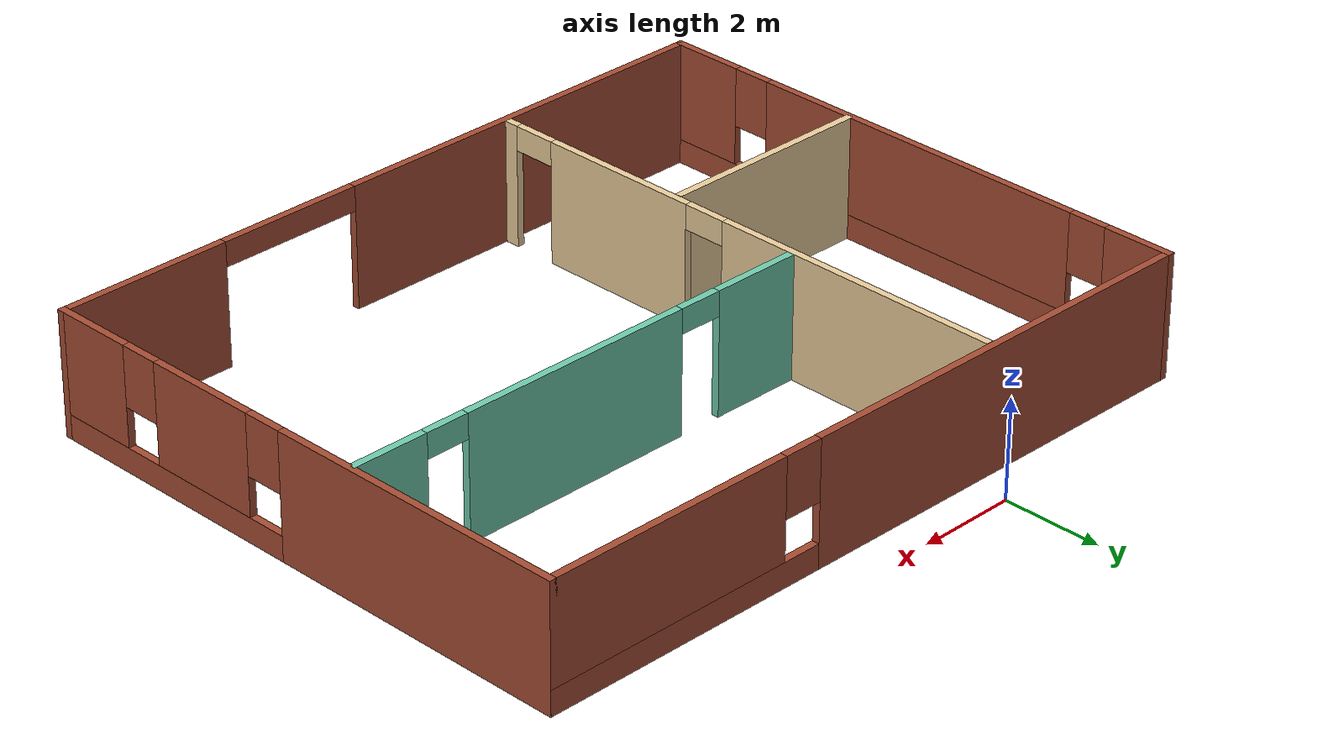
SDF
<?xml version='1.0'?>
<sdf version='1.6'>
  <model name='lab'>
    <pose frame=''>2.375 -6.745 0 0 -0 0</pose>
    <link name='Wall_0'>
      <pose frame=''>0 5.925 0 0 -0 0</pose>
      <visual name='Wall_0_Visual_0'>
        <pose frame=''>-3.02678 0 1.25 0 -0 0</pose>
        <geometry>
          <box>
            <size>8.94643 0.15 2.5</size>
          </box>
        </geometry>
        <material>
          <script>
            <uri>file://media/materials/scripts/gazebo.material</uri>
            <name>Gazebo/Bricks</name>
          </script>
          <ambient>1 1 1 1</ambient>
        </material>
        <meta>
          <layer>0</layer>
        </meta>
      </visual>
      <collision name='Wall_0_Collision_0'>
        <geometry>
          <box>
            <size>8.94643 0.15 2.5</size>
          </box>
        </geometry>
        <pose frame=''>-3.02678 0 1.25 0 -0 0</pose>
      </collision>
      <visual name='Wall_0_Visual_1'>
        <pose frame=''>4.47321 0 0.25 0 -0 0</pose>
        <geometry>
          <box>
            <size>6.05357 0.15 0.5</size>
          </box>
        </geometry>
        <material>
          <script>
            <uri>file://media/materials/scripts/gazebo.material</uri>
            <name>Gazebo/Bricks</name>
          </script>
          <ambient>1 1 1 1</ambient>
        </material>
        <meta>
          <layer>0</layer>
        </meta>
      </visual>
      <collision name='Wall_0_Collision_1'>
        <geometry>
          <box>
            <size>6.05357 0.15 0.5</size>
          </box>
        </geometry>
        <pose frame=''>4.47321 0 0.25 0 -0 0</pose>
      </collision>
      <visual name='Wall_0_Visual_2'>
        <pose frame=''>4.87322 0 1.5 0 -0 0</pose>
        <geometry>
          <box>
            <size>5.25357 0.15 2</size>
          </box>
        </geometry>
        <material>
          <script>
            <uri>file://media/materials/scripts/gazebo.material</uri>
            <name>Gazebo/Bricks</name>
          </script>
          <ambient>1 1 1 1</ambient>
        </material>
        <meta>
          <layer>0</layer>
        </meta>
      </visual>
      <collision name='Wall_0_Collision_2'>
        <geometry>
          <box>
            <size>5.25357 0.15 2</size>
          </box>
        </geometry>
        <pose frame=''>4.87322 0 1.5 0 -0 0</pose>
      </collision>
      <visual name='Wall_0_Visual_3'>
        <pose frame=''>1.84643 0 1.9 0 -0 0</pose>
        <geometry>
          <box>
            <size>0.8 0.15 1.2</size>
          </box>
        </geometry>
        <material>
          <script>
            <uri>file://media/materials/scripts/gazebo.material</uri>
            <name>Gazebo/Bricks</name>
          </script>
          <ambient>1 1 1 1</ambient>
        </material>
        <meta>
          <layer>0</layer>
        </meta>
      </visual>
      <collision name='Wall_0_Collision_3'>
        <geometry>
          <box>
            <size>0.8 0.15 1.2</size>
          </box>
        </geometry>
        <pose frame=''>1.84643 0 1.9 0 -0 0</pose>
      </collision>
    </link>
    <link name='Wall_11'>
      <pose frame=''>2.26958 1.34658 0 0 -0 0</pose>
      <visual name='Wall_11_Visual_0'>
        <pose frame=''>-4.15547 0 1.25 0 -0 0</pose>
        <geometry>
          <box>
            <size>1.93905 0.15 2.5</size>
          </box>
        </geometry>
        <material>
          <script>
            <uri>file://media/materials/scripts/gazebo.material</uri>
            <name>Gazebo/Grey</name>
          </script>
          <ambient>0.435294 0.796078 0.67451 1</ambient>
        </material>
        <meta>
          <layer>0</layer>
        </meta>
      </visual>
      <collision name='Wall_11_Collision_0'>
        <geometry>
          <box>
            <size>1.93905 0.15 2.5</size>
          </box>
        </geometry>
        <pose frame=''>-4.15547 0 1.25 0 -0 0</pose>
      </collision>
      <visual name='Wall_11_Visual_1'>
        <pose frame=''>0.187453 0 1.25 0 -0 0</pose>
        <geometry>
          <box>
            <size>4.9468 0.15 2.5</size>
          </box>
        </geometry>
        <material>
          <script>
            <uri>file://media/materials/scripts/gazebo.material</uri>
            <name>Gazebo/Grey</name>
          </script>
          <ambient>0.435294 0.796078 0.67451 1</ambient>
        </material>
        <meta>
          <layer>0</layer>
        </meta>
      </visual>
      <collision name='Wall_11_Collision_1'>
        <geometry>
          <box>
            <size>4.9468 0.15 2.5</size>
          </box>
        </geometry>
        <pose frame=''>0.187453 0 1.25 0 -0 0</pose>
      </collision>
      <visual name='Wall_11_Visual_2'>
        <pose frame=''>4.34293 0 1.25 0 -0 0</pose>
        <geometry>
          <box>
            <size>1.56415 0.15 2.5</size>
          </box>
        </geometry>
        <material>
          <script>
            <uri>file://media/materials/scripts/gazebo.material</uri>
            <name>Gazebo/Grey</name>
          </script>
          <ambient>0.435294 0.796078 0.67451 1</ambient>
        </material>
        <meta>
          <layer>0</layer>
        </meta>
      </visual>
      <collision name='Wall_11_Collision_2'>
        <geometry>
          <box>
            <size>1.56415 0.15 2.5</size>
          </box>
        </geometry>
        <pose frame=''>4.34293 0 1.25 0 -0 0</pose>
      </collision>
      <visual name='Wall_11_Visual_3'>
        <pose frame=''>-2.73595 0 2.25 0 -0 0</pose>
        <geometry>
          <box>
            <size>0.9 0.15 0.5</size>
          </box>
        </geometry>
        <material>
          <script>
            <uri>file://media/materials/scripts/gazebo.material</uri>
            <name>Gazebo/Grey</name>
          </script>
          <ambient>0.435294 0.796078 0.67451 1</ambient>
        </material>
        <meta>
          <layer>0</layer>
        </meta>
      </visual>
      <collision name='Wall_11_Collision_3'>
        <geometry>
          <box>
            <size>0.9 0.15 0.5</size>
          </box>
        </geometry>
        <pose frame=''>-2.73595 0 2.25 0 -0 0</pose>
      </collision>
      <visual name='Wall_11_Visual_4'>
        <pose frame=''>3.11085 0 2.25 0 -0 0</pose>
        <geometry>
          <box>
            <size>0.9 0.15 0.5</size>
          </box>
        </geometry>
        <material>
          <script>
            <uri>file://media/materials/scripts/gazebo.material</uri>
            <name>Gazebo/Grey</name>
          </script>
          <ambient>0.435294 0.796078 0.67451 1</ambient>
        </material>
        <meta>
          <layer>0</layer>
        </meta>
      </visual>
      <collision name='Wall_11_Collision_4'>
        <geometry>
          <box>
            <size>0.9 0.15 0.5</size>
          </box>
        </geometry>
        <pose frame=''>3.11085 0 2.25 0 -0 0</pose>
      </collision>
    </link>
    <link name='Wall_2'>
      <pose frame=''>-7.425 0 0 0 0 -1.5708</pose>
      <visual name='Wall_2_Visual_0'>
        <pose frame=''>-5.28084 0 1.25 0 -0 0</pose>
        <geometry>
          <box>
            <size>1.43833 0.15 2.5</size>
          </box>
        </geometry>
        <material>
          <script>
            <uri>file://media/materials/scripts/gazebo.material</uri>
            <name>Gazebo/Bricks</name>
          </script>
          <ambient>0.921569 0.807843 0.615686 1</ambient>
        </material>
        <meta>
          <layer>0</layer>
        </meta>
      </visual>
      <collision name='Wall_2_Collision_0'>
        <geometry>
          <box>
            <size>1.43833 0.15 2.5</size>
          </box>
        </geometry>
        <pose frame=''>-5.28084 0 1.25 0 -0 0</pose>
      </collision>
      <visual name='Wall_2_Visual_1'>
        <pose frame=''>0.719164 0 0.25 0 -0 0</pose>
        <geometry>
          <box>
            <size>10.5617 0.15 0.5</size>
          </box>
        </geometry>
        <material>
          <script>
            <uri>file://media/materials/scripts/gazebo.material</uri>
            <name>Gazebo/Bricks</name>
          </script>
          <ambient>0.921569 0.807843 0.615686 1</ambient>
        </material>
        <meta>
          <layer>0</layer>
        </meta>
      </visual>
      <collision name='Wall_2_Collision_1'>
        <geometry>
          <box>
            <size>10.5617 0.15 0.5</size>
          </box>
        </geometry>
        <pose frame=''>0.719164 0 0.25 0 -0 0</pose>
      </collision>
      <visual name='Wall_2_Visual_2'>
        <pose frame=''>-0.080368 0 1.5 0 -0 0</pose>
        <geometry>
          <box>
            <size>7.36261 0.15 2</size>
          </box>
        </geometry>
        <material>
          <script>
            <uri>file://media/materials/scripts/gazebo.material</uri>
            <name>Gazebo/Bricks</name>
          </script>
          <ambient>0.921569 0.807843 0.615686 1</ambient>
        </material>
        <meta>
          <layer>0</layer>
        </meta>
      </visual>
      <collision name='Wall_2_Collision_2'>
        <geometry>
          <box>
            <size>7.36261 0.15 2</size>
          </box>
        </geometry>
        <pose frame=''>-0.080368 0 1.5 0 -0 0</pose>
      </collision>
      <visual name='Wall_2_Visual_3'>
        <pose frame=''>5.20047 0 1.5 0 -0 0</pose>
        <geometry>
          <box>
            <size>1.59906 0.15 2</size>
          </box>
        </geometry>
        <material>
          <script>
            <uri>file://media/materials/scripts/gazebo.material</uri>
            <name>Gazebo/Bricks</name>
          </script>
          <ambient>0.921569 0.807843 0.615686 1</ambient>
        </material>
        <meta>
          <layer>0</layer>
        </meta>
      </visual>
      <collision name='Wall_2_Collision_3'>
        <geometry>
          <box>
            <size>1.59906 0.15 2</size>
          </box>
        </geometry>
        <pose frame=''>5.20047 0 1.5 0 -0 0</pose>
      </collision>
      <visual name='Wall_2_Visual_4'>
        <pose frame=''>-4.16167 0 1.9 0 -0 0</pose>
        <geometry>
          <box>
            <size>0.8 0.15 1.2</size>
          </box>
        </geometry>
        <material>
          <script>
            <uri>file://media/materials/scripts/gazebo.material</uri>
            <name>Gazebo/Bricks</name>
          </script>
          <ambient>0.921569 0.807843 0.615686 1</ambient>
        </material>
        <meta>
          <layer>0</layer>
        </meta>
      </visual>
      <collision name='Wall_2_Collision_4'>
        <geometry>
          <box>
            <size>0.8 0.15 1.2</size>
          </box>
        </geometry>
        <pose frame=''>-4.16167 0 1.9 0 -0 0</pose>
      </collision>
      <visual name='Wall_2_Visual_5'>
        <pose frame=''>4.00094 0 1.9 0 -0 0</pose>
        <geometry>
          <box>
            <size>0.8 0.15 1.2</size>
          </box>
        </geometry>
        <material>
          <script>
            <uri>file://media/materials/scripts/gazebo.material</uri>
            <name>Gazebo/Bricks</name>
          </script>
          <ambient>0.921569 0.807843 0.615686 1</ambient>
        </material>
        <meta>
          <layer>0</layer>
        </meta>
      </visual>
      <collision name='Wall_2_Collision_5'>
        <geometry>
          <box>
            <size>0.8 0.15 1.2</size>
          </box>
        </geometry>
        <pose frame=''>4.00094 0 1.9 0 -0 0</pose>
      </collision>
    </link>
    <link name='Wall_3'>
      <pose frame=''>0 -5.925 0 0 -0 0</pose>
      <visual name='Wall_3_Visual_0'>
        <pose frame=''>-3.28908 0 1.25 0 -0 0</pose>
        <geometry>
          <box>
            <size>8.42184 0.15 2.5</size>
          </box>
        </geometry>
        <material>
          <script>
            <uri>file://media/materials/scripts/gazebo.material</uri>
            <name>Gazebo/Bricks</name>
          </script>
          <ambient>1 1 1 1</ambient>
        </material>
        <meta>
          <layer>0</layer>
        </meta>
      </visual>
      <collision name='Wall_3_Collision_0'>
        <geometry>
          <box>
            <size>8.42184 0.15 2.5</size>
          </box>
        </geometry>
        <pose frame=''>-3.28908 0 1.25 0 -0 0</pose>
      </collision>
      <visual name='Wall_3_Visual_1'>
        <pose frame=''>5.71092 0 1.25 0 -0 0</pose>
        <geometry>
          <box>
            <size>3.57816 0.15 2.5</size>
          </box>
        </geometry>
        <material>
          <script>
            <uri>file://media/materials/scripts/gazebo.material</uri>
            <name>Gazebo/Bricks</name>
          </script>
          <ambient>1 1 1 1</ambient>
        </material>
        <meta>
          <layer>0</layer>
        </meta>
      </visual>
      <collision name='Wall_3_Collision_1'>
        <geometry>
          <box>
            <size>3.57816 0.15 2.5</size>
          </box>
        </geometry>
        <pose frame=''>5.71092 0 1.25 0 -0 0</pose>
      </collision>
      <visual name='Wall_3_Visual_2'>
        <pose frame=''>2.42184 0 2.25 0 -0 0</pose>
        <geometry>
          <box>
            <size>3 0.15 0.5</size>
          </box>
        </geometry>
        <material>
          <script>
            <uri>file://media/materials/scripts/gazebo.material</uri>
            <name>Gazebo/Bricks</name>
          </script>
          <ambient>1 1 1 1</ambient>
        </material>
        <meta>
          <layer>0</layer>
        </meta>
      </visual>
      <collision name='Wall_3_Collision_2'>
        <geometry>
          <box>
            <size>3 0.15 0.5</size>
          </box>
        </geometry>
        <pose frame=''>2.42184 0 2.25 0 -0 0</pose>
      </collision>
    </link>
    <link name='Wall_5'>
      <pose frame=''>7.425 0 0 0 0 -1.5708</pose>
      <visual name='Wall_5_Visual_0'>
        <pose frame=''>-2.83874 0 1.25 0 -0 0</pose>
        <geometry>
          <box>
            <size>6.32251 0.15 2.5</size>
          </box>
        </geometry>
        <material>
          <script>
            <uri>file://media/materials/scripts/gazebo.material</uri>
            <name>Gazebo/Bricks</name>
          </script>
          <ambient>1 1 1 1</ambient>
        </material>
        <meta>
          <layer>0</layer>
        </meta>
      </visual>
      <collision name='Wall_5_Collision_0'>
        <geometry>
          <box>
            <size>6.32251 0.15 2.5</size>
          </box>
        </geometry>
        <pose frame=''>-2.83874 0 1.25 0 -0 0</pose>
      </collision>
      <visual name='Wall_5_Visual_1'>
        <pose frame=''>3.16126 0 0.25 0 -0 0</pose>
        <geometry>
          <box>
            <size>5.67749 0.15 0.5</size>
          </box>
        </geometry>
        <material>
          <script>
            <uri>file://media/materials/scripts/gazebo.material</uri>
            <name>Gazebo/Bricks</name>
          </script>
          <ambient>1 1 1 1</ambient>
        </material>
        <meta>
          <layer>0</layer>
        </meta>
      </visual>
      <collision name='Wall_5_Collision_1'>
        <geometry>
          <box>
            <size>5.67749 0.15 0.5</size>
          </box>
        </geometry>
        <pose frame=''>3.16126 0 0.25 0 -0 0</pose>
      </collision>
      <visual name='Wall_5_Visual_2'>
        <pose frame=''>2.29482 0 1.5 0 -0 0</pose>
        <geometry>
          <box>
            <size>2.34461 0.15 2</size>
          </box>
        </geometry>
        <material>
          <script>
            <uri>file://media/materials/scripts/gazebo.material</uri>
            <name>Gazebo/Bricks</name>
          </script>
          <ambient>1 1 1 1</ambient>
        </material>
        <meta>
          <layer>0</layer>
        </meta>
      </visual>
      <collision name='Wall_5_Collision_2'>
        <geometry>
          <box>
            <size>2.34461 0.15 2</size>
          </box>
        </geometry>
        <pose frame=''>2.29482 0 1.5 0 -0 0</pose>
      </collision>
      <visual name='Wall_5_Visual_3'>
        <pose frame=''>5.13356 0 1.5 0 -0 0</pose>
        <geometry>
          <box>
            <size>1.73288 0.15 2</size>
          </box>
        </geometry>
        <material>
          <script>
            <uri>file://media/materials/scripts/gazebo.material</uri>
            <name>Gazebo/Bricks</name>
          </script>
          <ambient>1 1 1 1</ambient>
        </material>
        <meta>
          <layer>0</layer>
        </meta>
      </visual>
      <collision name='Wall_5_Collision_3'>
        <geometry>
          <box>
            <size>1.73288 0.15 2</size>
          </box>
        </geometry>
        <pose frame=''>5.13356 0 1.5 0 -0 0</pose>
      </collision>
      <visual name='Wall_5_Visual_4'>
        <pose frame=''>0.722512 0 1.9 0 -0 0</pose>
        <geometry>
          <box>
            <size>0.8 0.15 1.2</size>
          </box>
        </geometry>
        <material>
          <script>
            <uri>file://media/materials/scripts/gazebo.material</uri>
            <name>Gazebo/Bricks</name>
          </script>
          <ambient>1 1 1 1</ambient>
        </material>
        <meta>
          <layer>0</layer>
        </meta>
      </visual>
      <collision name='Wall_5_Collision_4'>
        <geometry>
          <box>
            <size>0.8 0.15 1.2</size>
          </box>
        </geometry>
        <pose frame=''>0.722512 0 1.9 0 -0 0</pose>
      </collision>
      <visual name='Wall_5_Visual_5'>
        <pose frame=''>3.86712 0 1.9 0 -0 0</pose>
        <geometry>
          <box>
            <size>0.8 0.15 1.2</size>
          </box>
        </geometry>
        <material>
          <script>
            <uri>file://media/materials/scripts/gazebo.material</uri>
            <name>Gazebo/Bricks</name>
          </script>
          <ambient>1 1 1 1</ambient>
        </material>
        <meta>
          <layer>0</layer>
        </meta>
      </visual>
      <collision name='Wall_5_Collision_5'>
        <geometry>
          <box>
            <size>0.8 0.15 1.2</size>
          </box>
        </geometry>
        <pose frame=''>3.86712 0 1.9 0 -0 0</pose>
      </collision>
    </link>
    <link name='Wall_7'>
      <pose frame=''>-2.84321 -0.038197 0 0 0 -1.5708</pose>
      <visual name='Wall_7_Visual_0'>
        <pose frame=''>-2.79829 0 1.25 0 -0 0</pose>
        <geometry>
          <box>
            <size>6.15343 0.15 2.5</size>
          </box>
        </geometry>
        <material>
          <script>
            <uri>file://media/materials/scripts/gazebo.material</uri>
            <name>Gazebo/Grey</name>
          </script>
          <ambient>0.921569 0.807843 0.615686 1</ambient>
        </material>
        <meta>
          <layer>0</layer>
        </meta>
      </visual>
      <collision name='Wall_7_Collision_0'>
        <geometry>
          <box>
            <size>6.15343 0.15 2.5</size>
          </box>
        </geometry>
        <pose frame=''>-2.79829 0 1.25 0 -0 0</pose>
      </collision>
      <visual name='Wall_7_Visual_1'>
        <pose frame=''>2.89611 0 1.25 0 -0 0</pose>
        <geometry>
          <box>
            <size>3.43538 0.15 2.5</size>
          </box>
        </geometry>
        <material>
          <script>
            <uri>file://media/materials/scripts/gazebo.material</uri>
            <name>Gazebo/Grey</name>
          </script>
          <ambient>0.921569 0.807843 0.615686 1</ambient>
        </material>
        <meta>
          <layer>0</layer>
        </meta>
      </visual>
      <collision name='Wall_7_Collision_1'>
        <geometry>
          <box>
            <size>3.43538 0.15 2.5</size>
          </box>
        </geometry>
        <pose frame=''>2.89611 0 1.25 0 -0 0</pose>
      </collision>
      <visual name='Wall_7_Visual_2'>
        <pose frame=''>5.6944 0 1.25 0 -0 0</pose>
        <geometry>
          <box>
            <size>0.361195 0.15 2.5</size>
          </box>
        </geometry>
        <material>
          <script>
            <uri>file://media/materials/scripts/gazebo.material</uri>
            <name>Gazebo/Grey</name>
          </script>
          <ambient>0.921569 0.807843 0.615686 1</ambient>
        </material>
        <meta>
          <layer>0</layer>
        </meta>
      </visual>
      <collision name='Wall_7_Collision_2'>
        <geometry>
          <box>
            <size>0.361195 0.15 2.5</size>
          </box>
        </geometry>
        <pose frame=''>5.6944 0 1.25 0 -0 0</pose>
      </collision>
      <visual name='Wall_7_Visual_3'>
        <pose frame=''>0.728425 0 2.25 0 -0 0</pose>
        <geometry>
          <box>
            <size>0.9 0.15 0.5</size>
          </box>
        </geometry>
        <material>
          <script>
            <uri>file://media/materials/scripts/gazebo.material</uri>
            <name>Gazebo/Grey</name>
          </script>
          <ambient>0.921569 0.807843 0.615686 1</ambient>
        </material>
        <meta>
          <layer>0</layer>
        </meta>
      </visual>
      <collision name='Wall_7_Collision_3'>
        <geometry>
          <box>
            <size>0.9 0.15 0.5</size>
          </box>
        </geometry>
        <pose frame=''>0.728425 0 2.25 0 -0 0</pose>
      </collision>
      <visual name='Wall_7_Visual_4'>
        <pose frame=''>5.06381 0 2.25 0 -0 0</pose>
        <geometry>
          <box>
            <size>0.9 0.15 0.5</size>
          </box>
        </geometry>
        <material>
          <script>
            <uri>file://media/materials/scripts/gazebo.material</uri>
            <name>Gazebo/Grey</name>
          </script>
          <ambient>0.921569 0.807843 0.615686 1</ambient>
        </material>
        <meta>
          <layer>0</layer>
        </meta>
      </visual>
      <collision name='Wall_7_Collision_4'>
        <geometry>
          <box>
            <size>0.9 0.15 0.5</size>
          </box>
        </geometry>
        <pose frame=''>5.06381 0 2.25 0 -0 0</pose>
      </collision>
    </link>
    <link name='Wall_9'>
      <collision name='Wall_9_Collision'>
        <geometry>
          <box>
            <size>4.5 0.15 2.5</size>
          </box>
        </geometry>
        <pose frame=''>0 0 1.25 0 -0 0</pose>
      </collision>
      <visual name='Wall_9_Visual'>
        <pose frame=''>0 0 1.25 0 -0 0</pose>
        <geometry>
          <box>
            <size>4.5 0.15 2.5</size>
          </box>
        </geometry>
        <material>
          <script>
            <uri>file://media/materials/scripts/gazebo.material</uri>
            <name>Gazebo/Grey</name>
          </script>
          <ambient>0.921569 0.807843 0.615686 1</ambient>
        </material>
        <meta>
          <layer>0</layer>
        </meta>
      </visual>
      <pose frame=''>-5.17075 -1.55189 0 0 -0 0</pose>
    </link>
    <static>1</static>
  </model>
</sdf>
